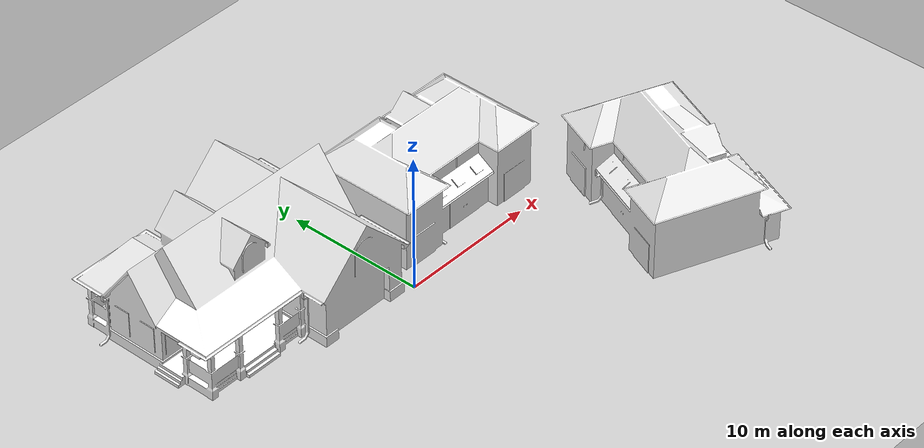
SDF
<?xml version="1.0" ?>
<sdf version='1.7'>
  <world name='default'>
  <include>
      <uri>model://sun</uri>
    </include>

    <include>
      <uri>model://ground_plane</uri>
    </include>

    <physics name='default_physics' default='0' type='ode'>
      <gravity>0 0 -9.8066</gravity>
      <ode>
        <solver>
          <type>quick</type>
          <iters>10</iters>
          <sor>1.3</sor>
          <use_dynamic_moi_rescaling>0</use_dynamic_moi_rescaling>
        </solver>
        <constraints>
          <cfm>0</cfm>
          <erp>0.2</erp>
          <contact_max_correcting_vel>100</contact_max_correcting_vel>
          <contact_surface_layer>0.001</contact_surface_layer>
        </constraints>
      </ode>
      <max_step_size>0.004</max_step_size>
      <real_time_factor>1</real_time_factor>
      <real_time_update_rate>250</real_time_update_rate>
      <magnetic_field>6.0e-6 2.3e-5 -4.2e-5</magnetic_field>
    </physics>

    <scene>
      <ambient>0.4 0.4 0.4 1</ambient>
      <background>0.7 0.7 0.7 1</background>
      <shadows>1</shadows>
    </scene>
    <audio>
      <device>default</device>
    </audio>
    <wind/>

    <model name='House 1'>
      <static>1</static>
      <link name='link'>
        <collision name='collision'>
          <geometry>
            <mesh>
              <uri>model://house_1/meshes/house_1.dae</uri>
              <scale>1.5 1.5 1.5</scale>
            </mesh>
          </geometry>
        </collision>
        <visual name='visual'>
          <geometry>
            <mesh>
              <uri>model://house_1/meshes/house_1.dae</uri>
              <scale>1.5 1.5 1.5</scale>
            </mesh>
          </geometry>
          <material>
            <script>
              <uri>model://house_1/materials/scripts</uri>
              <uri>model://house_1/materials/textures</uri>
              <name>House_1/Diffuse</name>
            </script>
          </material>
        </visual>
      </link>
      <pose>-8.05 6.89 0 0 0 0</pose>
    </model>

    <model name='House 2'>
      <static>1</static>
      <link name='link'>
        <collision name='collision'>
          <geometry>
            <mesh>
              <uri>model://house_2/meshes/house_2.dae</uri>
              <scale>1.5 1.5 1.5</scale>
            </mesh>
          </geometry>
        </collision>
        <visual name='visual'>
          <geometry>
            <mesh>
              <uri>model://house_2/meshes/house_2.dae</uri>
              <scale>1.5 1.5 1.5</scale>
            </mesh>
          </geometry>
          <material>
            <script>
              <uri>model://house_2/materials/scripts</uri>
              <uri>model://house_2/materials/textures</uri>
              <name>House_2/Diffuse</name>
            </script>
          </material>
        </visual>
      </link>
      <pose>5.87 5.21 0 0 0 0</pose>
    </model>

     <model name='House 3'>
      <static>1</static>
      <link name='link'>
        <collision name='collision'>
          <geometry>
            <mesh>
              <uri>model://house_2/meshes/house_2.dae</uri>
              <scale>1.5 1.5 1.5</scale>
            </mesh>
          </geometry>
        </collision>
        <visual name='visual'>
          <geometry>
            <mesh>
              <uri>model://house_2/meshes/house_2.dae</uri>
              <scale>1.5 1.5 1.5</scale>
            </mesh>
          </geometry>
          <material>
            <script>
              <uri>model://house_2/materials/scripts</uri>
              <uri>model://house_2/materials/textures</uri>
              <name>House_2/Diffuse</name>
            </script>
          </material>
        </visual>
      </link>
      <pose>16.45 -5.65 0 0 0 -1.96</pose>
    </model>

  </world>
</sdf>
